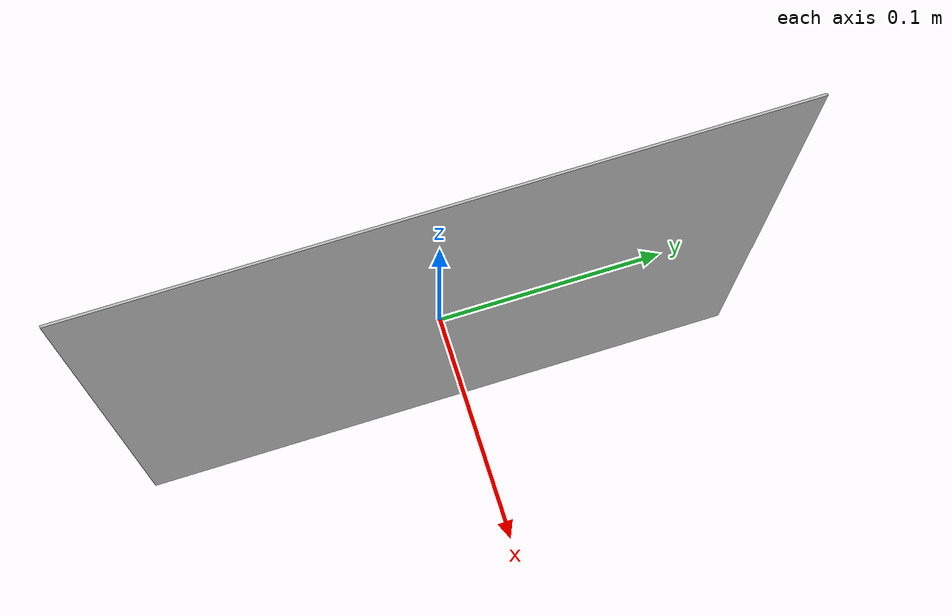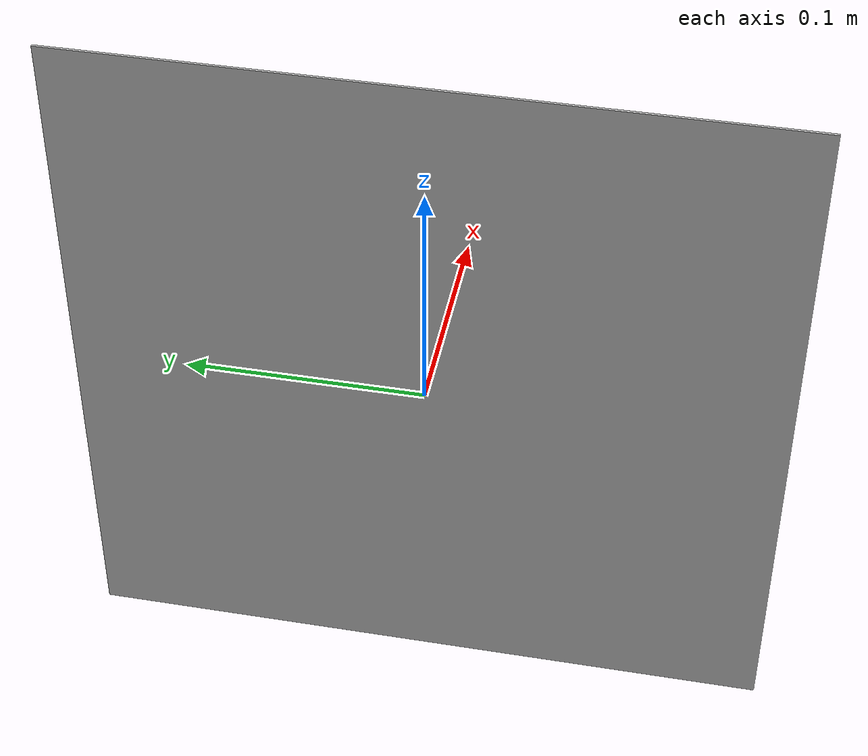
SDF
<?xml version="1.0"?>
<sdf version="1.4">
  <model name="qr_code2">

   <link name="qr_code_0">
      <pose>0 0 0 0 0 0</pose>
      <collision name="collision">
        <geometry>
            <box>
            <size>0.001 0.2968625 0.2968625</size>
          </box>
        </geometry>
      </collision>
      <visual name="visual">
        <geometry>
          <box>
            <size>0.001 0.2968625 0.2968625</size>
          </box>
        </geometry>
        <material>
		  <script>
            <uri>model://test/materials/scripts/qr_code_0.material</uri>
            <uri>model://test/materials/textures/qr_code_0.png</uri>
            <name>qr_code_0/Image</name>
          </script>
        </material>
      </visual>
    </link>

  </model>
</sdf>
